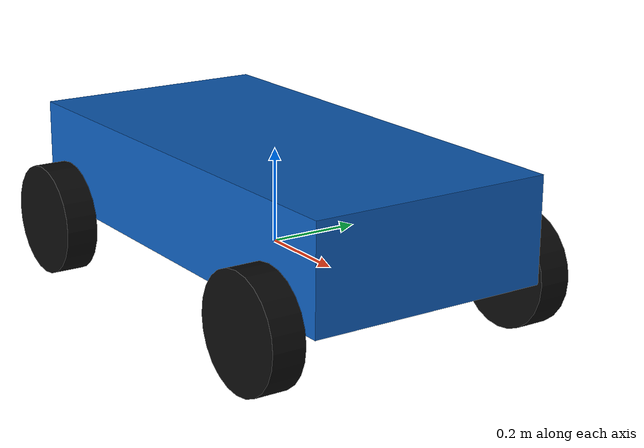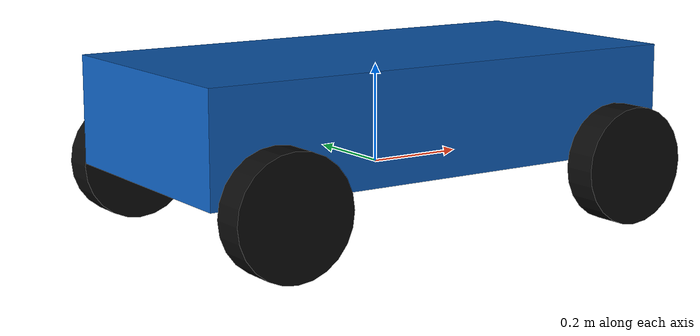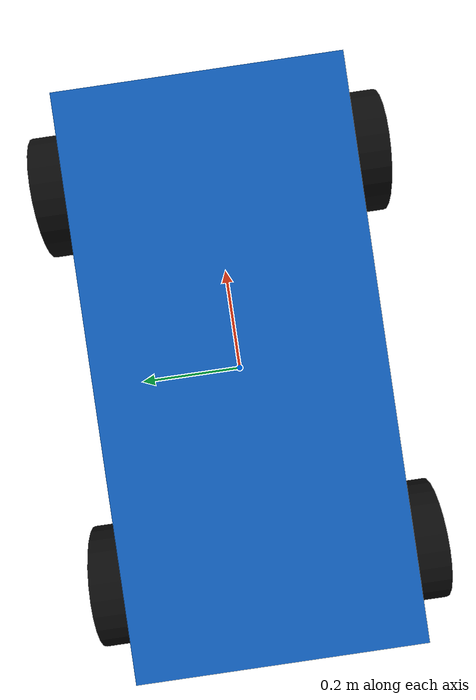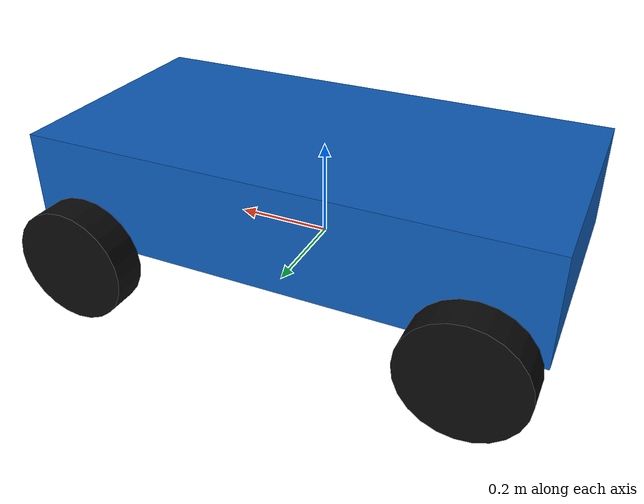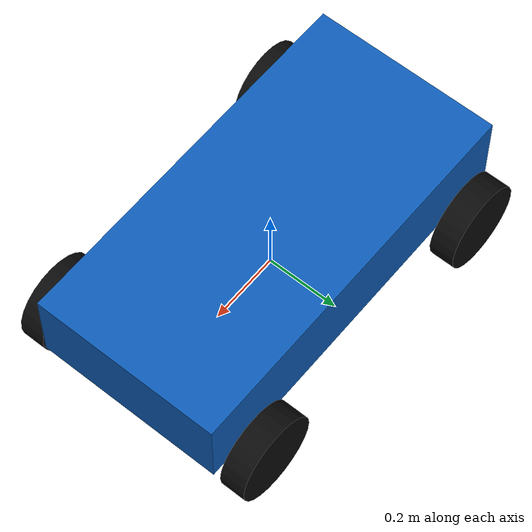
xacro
<?xml version="1.0" encoding="utf-8"?>
<robot name="ackerman_robot" xmlns:xacro="http://www.ros.org/wiki/xacro">

  <xacro:property name="wheelbase" value="0.8"/>
  <xacro:property name="track" value="0.62"/>
  <xacro:property name="wheel_radius" value="0.12"/>
  <xacro:property name="wheel_width" value="0.07"/>
  <xacro:property name="sensor_x" value="0.28"/>
  <xacro:property name="sensor_z" value="0.38"/>
  <!-- URDF requires a steering velocity limit; the SDF does not specify one.
       This configurable 1 rad/s default is a modeling assumption. -->
  <xacro:arg name="steering_velocity" default="1.0"/>

  <link name="base_link">
    <inertial>
      <origin xyz="0 0 0" rpy="0 0 0"/>
      <mass value="12.0"/>
      <inertia ixx="0.55" ixy="0" ixz="0"
               iyy="1.10" iyz="0" izz="1.40"/>
    </inertial>

    <visual name="body_visual">
      <origin xyz="0 0 0.12" rpy="0 0 0"/>
      <geometry>
        <box size="1.05 0.52 0.22"/>
      </geometry>
      <material name="body_blue">
        <color rgba="0.05 0.36 0.72 1"/>
      </material>
    </visual>

    <collision name="body_collision">
      <origin xyz="0 0 0.12" rpy="0 0 0"/>
      <geometry>
        <box size="1.05 0.52 0.22"/>
      </geometry>
    </collision>
  </link>

  <link name="front_left_knuckle">
    <inertial>
      <mass value="0.2"/>
      <inertia ixx="0.001" ixy="0" ixz="0"
               iyy="0.001" iyz="0" izz="0.001"/>
    </inertial>
  </link>

  <link name="front_right_knuckle">
    <inertial>
      <mass value="0.2"/>
      <inertia ixx="0.001" ixy="0" ixz="0"
               iyy="0.001" iyz="0" izz="0.001"/>
    </inertial>
  </link>

  <link name="front_left_wheel">
    <inertial>
      <origin xyz="0 0 0" rpy="${pi / 2} 0 0"/>
      <mass value="0.8"/>
      <inertia ixx="0.006" ixy="0" ixz="0"
               iyy="0.003" iyz="0" izz="0.006"/>
    </inertial>

    <visual name="visual">
      <origin xyz="0 0 0" rpy="${pi / 2} 0 0"/>
      <geometry>
        <cylinder radius="${wheel_radius}" length="${wheel_width}"/>
      </geometry>
      <material name="wheel_black">
        <color rgba="0.04 0.04 0.04 1"/>
      </material>
    </visual>

    <collision name="collision">
      <origin xyz="0 0 0" rpy="${pi / 2} 0 0"/>
      <geometry>
        <cylinder radius="${wheel_radius}" length="${wheel_width}"/>
      </geometry>
    </collision>
  </link>

  <link name="front_right_wheel">
    <inertial>
      <origin xyz="0 0 0" rpy="${pi / 2} 0 0"/>
      <mass value="0.8"/>
      <inertia ixx="0.006" ixy="0" ixz="0"
               iyy="0.003" iyz="0" izz="0.006"/>
    </inertial>

    <visual name="visual">
      <origin xyz="0 0 0" rpy="${pi / 2} 0 0"/>
      <geometry>
        <cylinder radius="${wheel_radius}" length="${wheel_width}"/>
      </geometry>
      <material name="wheel_black">
        <color rgba="0.04 0.04 0.04 1"/>
      </material>
    </visual>

    <collision name="collision">
      <origin xyz="0 0 0" rpy="${pi / 2} 0 0"/>
      <geometry>
        <cylinder radius="${wheel_radius}" length="${wheel_width}"/>
      </geometry>
    </collision>
  </link>

  <link name="rear_left_wheel">
    <inertial>
      <origin xyz="0 0 0" rpy="${pi / 2} 0 0"/>
      <mass value="0.8"/>
      <inertia ixx="0.006" ixy="0" ixz="0"
               iyy="0.003" iyz="0" izz="0.006"/>
    </inertial>

    <visual name="visual">
      <origin xyz="0 0 0" rpy="${pi / 2} 0 0"/>
      <geometry>
        <cylinder radius="${wheel_radius}" length="${wheel_width}"/>
      </geometry>
      <material name="wheel_black">
        <color rgba="0.04 0.04 0.04 1"/>
      </material>
    </visual>

    <collision name="collision">
      <origin xyz="0 0 0" rpy="${pi / 2} 0 0"/>
      <geometry>
        <cylinder radius="${wheel_radius}" length="${wheel_width}"/>
      </geometry>
    </collision>
  </link>

  <link name="rear_right_wheel">
    <inertial>
      <origin xyz="0 0 0" rpy="${pi / 2} 0 0"/>
      <mass value="0.8"/>
      <inertia ixx="0.006" ixy="0" ixz="0"
               iyy="0.003" iyz="0" izz="0.006"/>
    </inertial>

    <visual name="visual">
      <origin xyz="0 0 0" rpy="${pi / 2} 0 0"/>
      <geometry>
        <cylinder radius="${wheel_radius}" length="${wheel_width}"/>
      </geometry>
      <material name="wheel_black">
        <color rgba="0.04 0.04 0.04 1"/>
      </material>
    </visual>

    <collision name="collision">
      <origin xyz="0 0 0" rpy="${pi / 2} 0 0"/>
      <geometry>
        <cylinder radius="${wheel_radius}" length="${wheel_width}"/>
      </geometry>
    </collision>
  </link>

  <link name="camera_link">
    <inertial>
      <mass value="0.033333333333"/>
      <inertia ixx="0.000333333333" ixy="0" ixz="0"
               iyy="0.000333333333" iyz="0" izz="0.000333333333"/>
    </inertial>
  </link>

  <link name="lidar_link">
    <inertial>
      <mass value="0.033333333333"/>
      <inertia ixx="0.000333333333" ixy="0" ixz="0"
               iyy="0.000333333333" iyz="0" izz="0.000333333333"/>
    </inertial>
  </link>

  <link name="imu_link">
    <inertial>
      <mass value="0.033333333334"/>
      <inertia ixx="0.000333333334" ixy="0" ixz="0"
               iyy="0.000333333334" iyz="0" izz="0.000333333334"/>
    </inertial>
  </link>

  <!-- Joint origins locate child frames relative to their parents at q=0. -->
  <joint name="front_left_steering_joint" type="revolute">
    <parent link="base_link"/>
    <child link="front_left_knuckle"/>
    <origin xyz="${wheelbase / 2} ${track / 2} 0" rpy="0 0 0"/>
    <axis xyz="0 0 1"/>
    <limit lower="-0.55" upper="0.55" effort="25"
           velocity="$(arg steering_velocity)"/>
  </joint>

  <joint name="front_right_steering_joint" type="revolute">
    <parent link="base_link"/>
    <child link="front_right_knuckle"/>
    <origin xyz="${wheelbase / 2} -${track / 2} 0" rpy="0 0 0"/>
    <axis xyz="0 0 1"/>
    <limit lower="-0.55" upper="0.55" effort="25"
           velocity="$(arg steering_velocity)"/>
  </joint>

  <joint name="front_left_wheel_joint" type="continuous">
    <parent link="front_left_knuckle"/>
    <child link="front_left_wheel"/>
    <origin xyz="0 0 0" rpy="0 0 0"/>
    <axis xyz="0 1 0"/>
  </joint>

  <joint name="front_right_wheel_joint" type="continuous">
    <parent link="front_right_knuckle"/>
    <child link="front_right_wheel"/>
    <origin xyz="0 0 0" rpy="0 0 0"/>
    <axis xyz="0 1 0"/>
  </joint>

  <joint name="rear_left_wheel_joint" type="continuous">
    <parent link="base_link"/>
    <child link="rear_left_wheel"/>
    <origin xyz="-${wheelbase / 2} ${track / 2} 0" rpy="0 0 0"/>
    <axis xyz="0 1 0"/>
  </joint>

  <joint name="rear_right_wheel_joint" type="continuous">
    <parent link="base_link"/>
    <child link="rear_right_wheel"/>
    <origin xyz="-${wheelbase / 2} -${track / 2} 0" rpy="0 0 0"/>
    <axis xyz="0 1 0"/>
  </joint>

  <joint name="camera_joint" type="fixed">
    <parent link="base_link"/>
    <child link="camera_link"/>
    <origin xyz="${sensor_x} 0 ${sensor_z}" rpy="0 0 0"/>
  </joint>

  <joint name="lidar_joint" type="fixed">
    <parent link="base_link"/>
    <child link="lidar_link"/>
    <origin xyz="${sensor_x} 0 ${sensor_z}" rpy="0 0 0"/>
  </joint>

  <joint name="imu_joint" type="fixed">
    <parent link="base_link"/>
    <child link="imu_link"/>
    <origin xyz="${sensor_x} 0 ${sensor_z}" rpy="0 0 0"/>
  </joint>

</robot>
